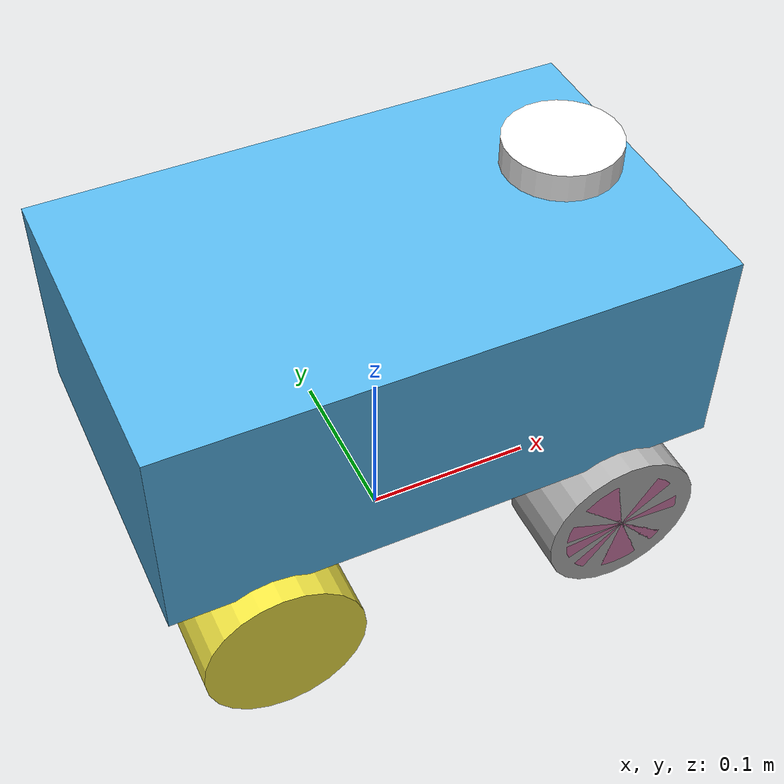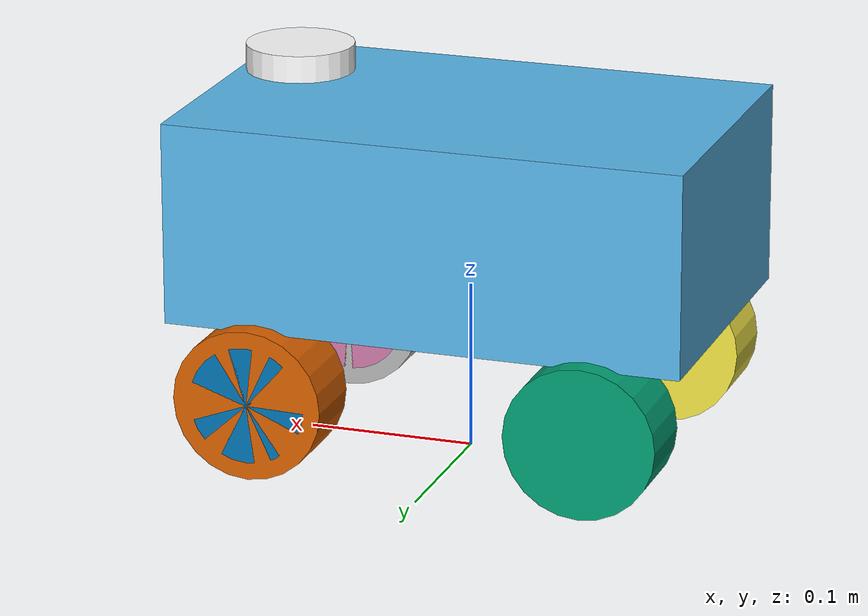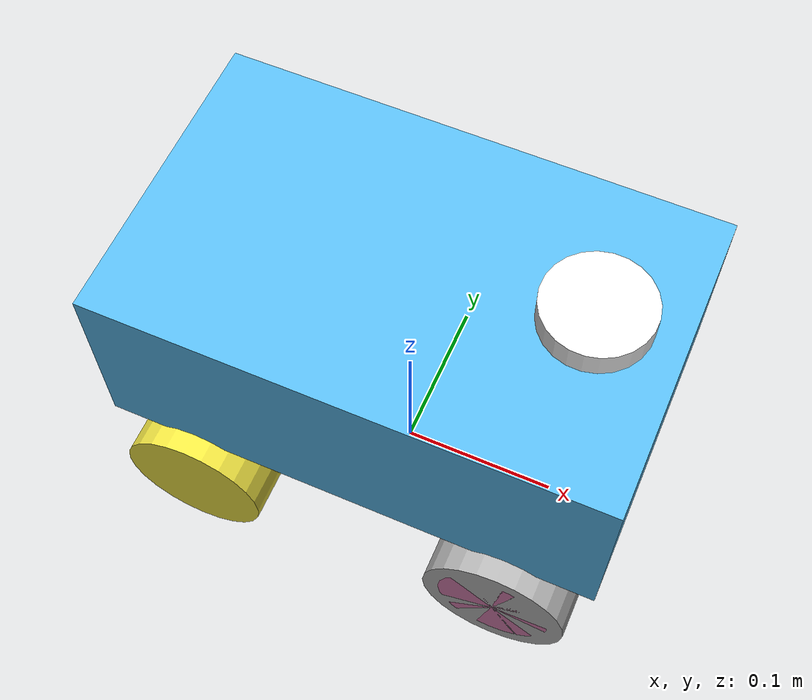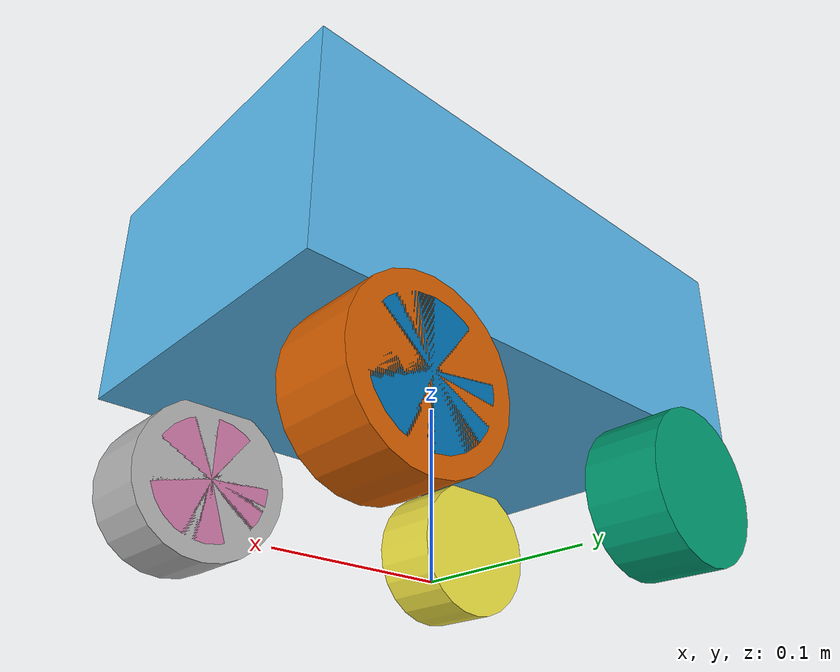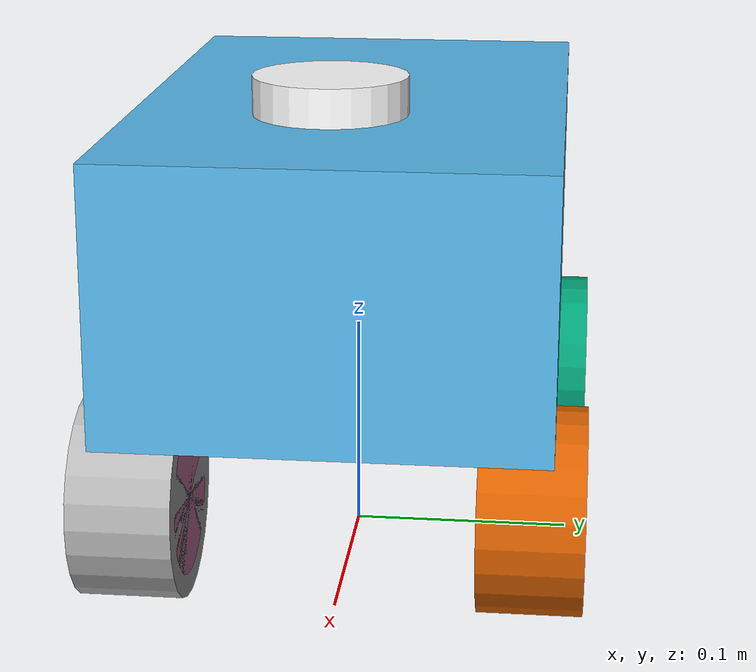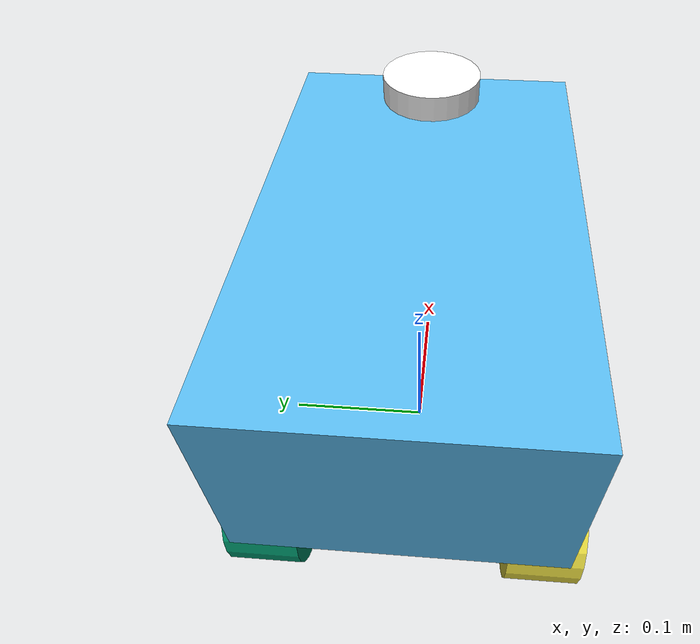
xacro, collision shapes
<?xml version="1.0"?>
<!--Auto: Zhui Li-->
<!--E-Mail: lz554113510@gmail.com -->
<!--Company: Institut für Intermodale Transport- und Logistiksysteme in Technische Universität Braunschweig -->

<robot name="limo_ackermann" xmlns:xacro="http://www.ros.org/wiki/xacro">

    <xacro:include filename="$(find limo_car)/gazebo/ackermann.xacro" />
    <xacro:include filename="$(find limo_car)/gazebo/sensor.xacro" />

    <!-- ************************* Gövde ****************************** -->
    <xacro:limo_ackermann />

    <!-- ************************* Laser ****************************** -->
    <xacro:gazebo_laser frame_prefix="laser" />

    <joint name="laser_joint" type="fixed">
        <origin xyz="0.105 0 0.08" rpy="0 0 -0.15"/>
        <parent link="base_link"/>
        <child link="laser_link"/>
    </joint>
    <!-- ************************* Depth-camera *********************** -->
    <xacro:gazebo_depth_camera frame_prefix="camera" />

    <joint name="depth_camera_joint" type="fixed">
        <!-- resmi AgileX değeri (bkz. limo_description/urdf/limo_four_diff.xacro) -->
        <origin xyz="0.084 0 0.03" rpy="0 0 0"/>
        <parent link="base_link"/>
        <child link="camera_link"/>
    </joint>
    <!-- ************************* IMU ******************************** -->
    <xacro:gazebo_imu frame_prefix="imu" />

    <joint name="imu_joint" type="fixed">
        <origin xyz="0 0 0" rpy="0 0 0"/>
        <parent link="base_link"/>
        <child link="imu_link"/>
    </joint>
</robot>

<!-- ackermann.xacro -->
<!--Auto: Zhui Li-->
<!--E-Mail: lz554113510@gmail.com -->
<!--Company: Institut für Intermodale Transport- und Logistiksysteme in Technische Universität Braunschweig -->

<robot name="limo_ackermann" xmlns:xacro="http://www.ros.org/wiki/xacro">

    <!-- ******************************** Paramenten zu definieren ************************************* -->
    <!-- definiert Value -->
    <xacro:property name="M_PI" value="3.14159"/>

    <!-- das Value sind all gemessen -->
    <xacro:property name="base_mass" value="4.34"/>
    <xacro:property name="base_x_size" value="0.19" />
    <xacro:property name="base_y_size" value="0.31" />
    <xacro:property name="base_z_size" value="0.12" />

    <xacro:property name="wheelbase" value="0.2"/>
    <xacro:property name="track" value="0.172"/>
    <xacro:property name="wheel_vertical_offset" value="-0.10" />

    <xacro:property name="wheel_mass" value="0.5" />
    <xacro:property name="wheel_length" value="0.045" />
    <xacro:property name="wheel_radius" value="0.045" />

    <!-- definieren die Macro-Function für die Rechnungen der Matrizen für Trägheitsmoment-->
    <!-- Zylinder -->
    <xacro:macro name="cylinder_inertial_matrix" params="m r h">
        <inertial>
            <origin xyz="0.0 0.0 0.0" />
            <mass value="${m}" />
            <inertia ixx="${m*(3*r*r+h*h)/12}" ixy = "0" ixz = "0"
                     iyy="${m*(3*r*r+h*h)/12}" iyz = "0"
                     izz="${m*r*r/2}" />
        </inertial>
    </xacro:macro>
    <!-- Quader -->
    <xacro:macro name="box_inertial_matrix" params="m w l h">
        <inertial>
            <origin xyz="0.0 0.0 0.0" />
            <mass value="${m}" />
            <inertia ixx="${m*(w*w+h*h)/12}" ixy = "0" ixz = "0"
                     iyy="${m*(h*h+l*l)/12}" iyz = "0"
                     izz="${m*(w*w+l*l)/12}" />
        </inertial>
    </xacro:macro>

    <!-- **************************** Makrofunktion zu definieren ************************************** -->
    <!-- Makrofunktion für vorderen Räder mit Steuerscharnier-->
    <!-- front left -->
    <xacro:macro name="limo_left_steering_hinge" params="parent_prefix wheel_prefix *joint_pose">
        <link name="${wheel_prefix}_steer_link">
            <inertial>
                <!-- diese Daten kommen aus den Herstellern -->
                <mass value="0.25" />
                <inertia ixx="0.00525" ixy="0" ixz="0" iyy="0.00035" iyz="0" izz="0.00525" />
                <origin xyz="0 0 0" />
            </inertial>
            <visual>
                <origin xyz="0 0 0" rpy="0 0 0" />
                <geometry>
                    <!-- es ist sehr klein, einfach als Klein definiert wird -->
                    <cylinder length="0.0001" radius="0.0001" />
                </geometry>
            </visual>
            <collision>
                <origin xyz="0 0 0" rpy="${M_PI/2} 0 0" />
                <geometry>
                    <cylinder length="${wheel_length}" radius="${wheel_radius-0.01}" />
                </geometry>
            </collision>
        </link>

        <joint name="${wheel_prefix}_steer_joint" type="revolute">
            <parent link="${parent_prefix}"/>
            <child link="${wheel_prefix}_steer_link"/>
            <xacro:insert_block name="joint_pose"/>
            <axis xyz="0 0 1" />
            <!-- Paramenten von Herstellern -->
            <limit lower="-0.48869" upper="0.48869" effort="20" velocity="0.5" />
            <dynamics damping="0.5" friction="0.2"/>
        </joint>

        <transmission name="${wheel_prefix}_hinge_trans" type="SimpleTransmission">
            <type>transmission_interface/SimpleTransmission</type>
            <actuator name="${wheel_prefix}_hinge_motor">
                <hardwareInterface>hardware_interface/EffortJointInterface</hardwareInterface>
                <mechanicalReduction>1</mechanicalReduction>
            </actuator>
            <joint name="${wheel_prefix}_steer_joint">
                <hardwareInterface>hardware_interface/EffortJointInterface</hardwareInterface>
            </joint>
        </transmission>

        <link name="${wheel_prefix}_wheel_link">
            <visual>
                <origin xyz="0 0 0" rpy="0 0 0" />
                <geometry>
                    <mesh filename="$(find limo_car)/meshes/limo_wheel.dae" scale="1.2 1.2 1.2"/>
                </geometry>
            </visual>
            <collision>
                <origin xyz="0 0 0" rpy="${M_PI/2} 0 0" />
                <geometry>
                    <cylinder length="${wheel_length}" radius="${wheel_radius}" />
                </geometry>
            </collision>
            <xacro:cylinder_inertial_matrix  m="${wheel_mass}" r="${wheel_radius}"  h="${wheel_length}" />
        </link>

        <joint name="${wheel_prefix}_wheel_joint" type="continuous">
            <parent link="${wheel_prefix}_steer_link"/>
            <child link="${wheel_prefix}_wheel_link"/>
            <origin xyz="0 0 0" rpy="0 0 0" />
            <axis xyz="0 1 0"/>
        </joint>

        <transmission name="${wheel_prefix}_wheel_trans" type="SimpleTransmission">
            <type>transmission_interface/SimpleTransmission</type>
            <actuator name="${wheel_prefix}_wheel_motor">
                <!-- Type für den Topic(Paramenten) -->
                <hardwareInterface>hardware_interface/VelocityJointInterface</hardwareInterface>
                <mechanicalReduction>1</mechanicalReduction>
            </actuator>
            <joint name="${wheel_prefix}_wheel_joint">
                <hardwareInterface>hardware_interface/VelocityJointInterface</hardwareInterface>
            </joint>
        </transmission>
    </xacro:macro>

    <!-- front right -->
    <xacro:macro name="limo_right_steering_hinge" params="parent_prefix wheel_prefix *joint_pose">
        <link name="${wheel_prefix}_steer_link">
            <inertial>
                <mass value="0.25" />
                <inertia ixx="0.00525" ixy="0" ixz="0" iyy="0.00035" iyz="0" izz="0.00525" />
                <origin xyz="0 0 0" />
            </inertial>
            <visual>
                <origin xyz="0 0 0" rpy="0 0 0" />
                <geometry>
                    <cylinder length="0.0001" radius="0.0001" />
                </geometry>
            </visual>
            <collision>
                <origin xyz="0 0 0" rpy="${M_PI/2} 0 0" />
                <geometry>
                    <cylinder length="${wheel_length}" radius="${wheel_radius-0.01}" />
                </geometry>
            </collision>
        </link>

        <joint name="${wheel_prefix}_steer_joint" type="revolute">
            <parent link="${parent_prefix}"/>
            <child link="${wheel_prefix}_steer_link"/>
            <xacro:insert_block name="joint_pose"/>
            <axis xyz="0 0 -1"/>
            <limit lower="-0.48869" upper="0.48869" effort="20" velocity="0.5" />
            <dynamics damping="0.5" friction="0.2"/>
        </joint>

        <transmission name="${wheel_prefix}_hinge_trans" type="SimpleTransmission">
            <type>transmission_interface/SimpleTransmission</type>
            <actuator name="${wheel_prefix}_hinge_motor">
                <hardwareInterface>hardware_interface/EffortJointInterface</hardwareInterface>
                <mechanicalReduction>1</mechanicalReduction>
            </actuator>
            <joint name="${wheel_prefix}_steer_joint">
                <hardwareInterface>hardware_interface/EffortJointInterface</hardwareInterface>
            </joint>
        </transmission>

        <link name="${wheel_prefix}_wheel_link">
            <visual>
                <origin xyz="0 0 0" rpy="0 0 0" />
                <geometry>
                    <mesh filename="$(find limo_car)/meshes/limo_wheel.dae" scale="1.2 1.2 1.2" />
                </geometry>
            </visual>
            <collision>
                <origin xyz="0 0 0" rpy="${M_PI/2} 0 0" />
                <geometry>
                    <cylinder length="${wheel_length}" radius="${wheel_radius}" />
                </geometry>
            </collision>
            <xacro:cylinder_inertial_matrix  m="${wheel_mass}" r="${wheel_radius}"  h="${wheel_length}" />
        </link>

        <joint name="${wheel_prefix}_wheel_joint" type="continuous">
            <parent link="${wheel_prefix}_steer_link"/>
            <child link="${wheel_prefix}_wheel_link"/>
            <origin xyz="0 0 0" rpy="0 0  0" />
            <axis xyz="0 -1 0"/>
        </joint>

        <transmission name="${wheel_prefix}_wheel_trans" type="SimpleTransmission">
            <type>transmission_interface/SimpleTransmission</type>
            <actuator name="${wheel_prefix}_wheel_motor">
                <!-- Type für den Topic(Paramenten) -->
                <hardwareInterface>hardware_interface/VelocityJointInterface</hardwareInterface>
                <mechanicalReduction>1</mechanicalReduction>
            </actuator>
            <joint name="${wheel_prefix}_wheel_joint">
                <hardwareInterface>hardware_interface/VelocityJointInterface</hardwareInterface>
            </joint>
        </transmission>
    </xacro:macro>

    <!-- ***************************************** Base zu bauen *************************************** -->
    <!-- erstellt Hauptanteil des Modells, definiert ein Nullpunkt, um Modell aufzubauen. Es ist einfach für weitere
    Darstellungspostion in Simulation-Umgebung -->
    <xacro:macro name="limo_ackermann">
        <link name="base_footprint"/>

        <joint name="base_joint" type="fixed">
            <parent link="base_footprint"/>
            <child link="base_link"/>
            <origin xyz="0.0 0.0 0.15" rpy="0 0 0"/>
        </joint>

        <!-- herstellt base_link -->
        <link name="base_link">
            <visual>
                <origin xyz="0 0 -0.15" rpy="0 0 ${M_PI/2}" />
                <geometry>
                    <!-- Modell von Hersteller, aber es ist kleiner als realen Produkt, da die Skale vergrößert wird -->
                    <mesh filename="$(find limo_car)/meshes/limo_base.dae" scale="1.2 1.2 1.2" />
                </geometry>
            </visual>
            <!-- Modell für physikalische Kollision zu modellieren. -->
            <collision>
                <origin xyz="0 0 0" rpy="0 0 0" />
                <geometry>
                    <box size="${base_y_size} ${base_x_size} ${base_z_size}"/>
                </geometry>
            </collision>
            <xacro:box_inertial_matrix  m="${base_mass}" w="${base_x_size}" l="${base_y_size}" h="${base_z_size}" />
        </link>

        <gazebo reference="base_link">
            <material>
                <color rgba="0 0 0 0.5"/>
            </material>
        </gazebo>

        <!-- hinten Räder -->
        <link name="rear_left_wheel_link">
            <visual>
                <origin xyz="0 0 0" rpy="0 0 0" />
                <geometry>
                    <mesh filename="$(find limo_car)/meshes/limo_wheel.dae" scale="1.2 1.2 1.2"/>
                </geometry>
            </visual>
            <collision>
                <origin xyz="0 0 0" rpy="${M_PI/2} 0 0" />
                <geometry>
                    <cylinder length="${wheel_length}" radius="${wheel_radius}" />
                </geometry>
            </collision>
            <xacro:cylinder_inertial_matrix  m="${wheel_mass}" r="${wheel_radius}" h="${wheel_length}"/>
        </link>

        <joint name="rear_left_wheel_joint" type="continuous">
            <parent link="base_link"/>
            <child link="rear_left_wheel_link"/>
            <origin xyz="${-wheelbase/2} ${track/2} ${wheel_vertical_offset}" rpy="0 0 0" />
            <axis xyz="0 1 0"/>
        </joint>

        <transmission name="rear_left_wheel_trans" type="SimpleTransmission">
            <type>transmission_interface/SimpleTransmission</type>
            <actuator name="rear_left_wheel_motor">
                <hardwareInterface>hardware_interface/VelocityJointInterface</hardwareInterface>
                <mechanicalReduction>1</mechanicalReduction>
            </actuator>
            <joint name="rear_left_wheel_joint">
                <hardwareInterface>hardware_interface/VelocityJointInterface</hardwareInterface>
            </joint>
        </transmission>

        <link name="rear_right_wheel_link">
            <visual>
                <origin xyz="0 0 0" rpy="0 0 0" />
                <geometry>
                    <mesh filename="$(find limo_car)/meshes/limo_wheel.dae" scale="1.2 1.2 1.2"/>
                </geometry>
            </visual>
            <collision>
                <origin xyz="0 0 0" rpy="${M_PI/2} 0 0" />
                <geometry>
                    <cylinder length="${wheel_length}" radius="${wheel_radius}" />
                </geometry>
            </collision>
            <xacro:cylinder_inertial_matrix  m="${wheel_mass}" r="${wheel_radius}" h="${wheel_length}"/>
        </link>

        <joint name="rear_right_wheel_joint" type="continuous">
            <parent link="base_link"/>
            <child link="rear_right_wheel_link"/>
            <origin xyz="${-wheelbase/2} ${-track/2} ${wheel_vertical_offset}" rpy="${M_PI} 0 0" />
            <axis xyz="0 -1 0"/>
        </joint>

        <transmission name="rear_right_wheel_trans" type="SimpleTransmission">
            <type>transmission_interface/SimpleTransmission</type>
            <actuator name="rear_right_wheel_motor">
                <hardwareInterface>hardware_interface/VelocityJointInterface</hardwareInterface>
                <mechanicalReduction>1</mechanicalReduction>
            </actuator>
            <joint name="rear_right_wheel_joint">
                <hardwareInterface>hardware_interface/VelocityJointInterface</hardwareInterface>
            </joint>
        </transmission>

        <!-- ruft Steuerscharnier mit vorderem Räder auf -->
        <xacro:limo_left_steering_hinge parent_prefix="base_link" wheel_prefix="front_left">
            <origin xyz="${wheelbase/2} ${track/2} ${wheel_vertical_offset}" rpy="0 0 0" />
        </xacro:limo_left_steering_hinge>

        <xacro:limo_right_steering_hinge parent_prefix="base_link" wheel_prefix="front_right">
            <origin xyz="${wheelbase/2} ${-track/2} ${wheel_vertical_offset}" rpy="${M_PI} 0 0" />
        </xacro:limo_right_steering_hinge>

        <!-- ********************************** Kontrolle zu erstellen ************************************* -->
        <gazebo>
            <plugin name="gazebo_ros_control" filename="libgazebo_ros_control.so" />
            <plugin name="ackermann_controller" filename="libgazebo_ros_ackermann_drive.so">
                <ros>
                    <remapping>cmd_vel:=cmd_vel_steer</remapping>
                </ros>
                <update_rate>100</update_rate>
                <front_left_joint>front_left_wheel_joint</front_left_joint>
                <front_right_joint>front_right_wheel_joint</front_right_joint>
                <rear_left_joint>rear_left_wheel_joint</rear_left_joint>
                <rear_right_joint>rear_right_wheel_joint</rear_right_joint>
                <left_steering_joint>front_left_steer_joint</left_steering_joint>
                <right_steering_joint>front_right_steer_joint</right_steering_joint>
                <steering_wheel_joint>/</steering_wheel_joint>

                <left_steering_pid_gain>10000 100 10</left_steering_pid_gain>
                <left_steering_i_rang>0 0</left_steering_i_rang>
                <right_steering_pid_gain>10000 100 10</right_steering_pid_gain>
                <right_steering_i_rang>0 0</right_steering_i_rang>
                <linear_velocity_pid_gain>0.5 10 0.001</linear_velocity_pid_gain>
                <linear_velocity_i_range>0 0</linear_velocity_i_range>

                <max_steer>0.48869</max_steer>

                <wheel_separation>0.172</wheel_separation>
                <wheel_diameter>0.09</wheel_diameter>
                <max_wheel_torque>20</max_wheel_torque>
                <max_wheel_acceleration>1.0</max_wheel_acceleration>
                <command_topic>cmd_vel_steer</command_topic>
                <publish_odom>true</publish_odom>
                <publish_odom_tf>true</publish_odom_tf>
                <publish_wheel_tf>true</publish_wheel_tf>
                <odometry_topic>odom</odometry_topic>
                <odometry_frame>odom</odometry_frame>
                <robot_base_frame>base_footprint</robot_base_frame>
                <odometry_source>1</odometry_source>
            </plugin>
        </gazebo>

        <!-- Tekerlek teması (24.09): varsayılan ODE teması çok sert, araç dururken titriyordu
             (IMU ivme σ z 0.25 m/s², gerçek 0.025). kp/kd sönümüyle gerçekle aynı (docs/sensor_modeli.md). -->
        <gazebo reference="front_left_wheel_link"><mu1>1.0</mu1><mu2>1.0</mu2><kp>1000000.0</kp><kd>100.0</kd><minDepth>0.001</minDepth><maxVel>0.1</maxVel></gazebo>
        <gazebo reference="front_right_wheel_link"><mu1>1.0</mu1><mu2>1.0</mu2><kp>1000000.0</kp><kd>100.0</kd><minDepth>0.001</minDepth><maxVel>0.1</maxVel></gazebo>
        <gazebo reference="rear_left_wheel_link"><mu1>1.0</mu1><mu2>1.0</mu2><kp>1000000.0</kp><kd>100.0</kd><minDepth>0.001</minDepth><maxVel>0.1</maxVel></gazebo>
        <gazebo reference="rear_right_wheel_link"><mu1>1.0</mu1><mu2>1.0</mu2><kp>1000000.0</kp><kd>100.0</kd><minDepth>0.001</minDepth><maxVel>0.1</maxVel></gazebo>
    </xacro:macro>
</robot>

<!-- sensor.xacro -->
<!-- Autor: Zhui Li -->
<!--E-Mail: lz554113510@gmail.com -->
<!--Company: Institut für Intermodale Transport- und Logistiksysteme in Technische Universität Braunschweig -->

<robot name="limo_sensor" xmlns:xacro="http://www.ros.org/wiki/xacro">

    <!-- ******************************* Makrofunktion für Laser-Sensor ***************************** -->
    <xacro:macro name="gazebo_laser" params="frame_prefix">
        <link name='${frame_prefix}_link'>
            <inertial>
                <mass value="0.1"/>
                <origin xyz="0.0 0 0" rpy="0 0 0"/>
                <inertia
                        ixx="1e-6" ixy="0" ixz="0"
                        iyy="1e-6" iyz="0"
                        izz="1e-6"
                />
            </inertial>
            <visual name='laser_visual'>
                <origin xyz="0 0 0" rpy="0 0 0"/>
                <geometry>
                    <cylinder radius="0.02" length="0.01"/>
                </geometry>
                <material name='laser_material'>
                    <color rgba="1 1 1 1" />
                    <ambient>0.1 0.1 0.1 1</ambient>
                    <diffuse>0.1 0.1 0.2 1</diffuse>
                    <specular>0 0 0 0</specular>
                    <emissive>0 0 0 1</emissive>
                </material>
            </visual>
            <collision name='laser_collision'>
                <origin xyz="0 0 0" rpy="0 0 0"/>
                <geometry>
                    <cylinder radius="0.032" length="0.016"/>
                </geometry>
            </collision>
        </link>

        <gazebo reference="${frame_prefix}_link">
            <sensor type="ray" name="laser_sensor">
                <visualize>false</visualize>
                <update_rate>6</update_rate>
                <ray>
                    <scan>
                        <horizontal>
                            <samples>481</samples>
                            <resolution>1</resolution>
                            <min_angle>-2.1468</min_angle> <!-- Einheit in "rad", von Hersteller -->
                            <max_angle>2.4609</max_angle>
                        </horizontal>
                    </scan>
                    <range>
                        <min>0.10</min>
                        <max>12.0</max>
                        <resolution>0.01</resolution>
                    </range>
                    <!-- um bessere Realität zu simulieren, wird Rauschen auch addiert -->
                    <noise>
                        <type>gaussian</type>
                        <mean>0.0</mean>
                        <stddev>0.007</stddev>
                    </noise>
                </ray>
                <plugin name="gazebo_ros_laser_sensor" filename="libgazebo_ros_ray_sensor.so">
                    <ros>
                        <namespace>/</namespace>
                        <remapping>~/out:=scan</remapping>
                    </ros>
                    <output_type>sensor_msgs/LaserScan</output_type>
                    <min_intensity>150.0</min_intensity>
                </plugin>
            </sensor>
        </gazebo>
    </xacro:macro>

    <!-- ******************************* Makrofunktion für Depth-Camera ***************************** -->
    <xacro:macro name="gazebo_depth_camera" params="frame_prefix">
        <link name='${frame_prefix}_link'>
            <origin xyz="0 0 0" rpy="0 0 0"/>
            <inertial>
                <mass value="0.1"/>
                <origin xyz="0.0 0 0" rpy="0 0 0"/>
                <inertia
                        ixx="1e-6" ixy="0" ixz="0"
                        iyy="1e-6" iyz="0"
                        izz="1e-6"
                />
            </inertial>
            <visual name='depth_camera_visual'>
                <origin xyz="0 0 0" rpy="0 0 0"/>
                <geometry>
                    <box size="0.02 0.06 0.015"/>
                </geometry>
                <material name='depth_camera_material'>
                    <color rgba="0.75 0.75 0.75 1" />
                    <ambient>0.1 0.1 0.1 1</ambient>
                    <diffuse>0.1 0.1 0.2 1</diffuse>
                    <specular>0 0 0 0</specular>
                    <emissive>0 0 0 1</emissive>
                </material>
            </visual>
            <collision name='depth_camera_collision'>
                <origin xyz="0 0 0" rpy="0 0 0"/>
                <geometry>
                    <box size="0.02 0.06 0.015"/>
                </geometry>
            </collision>
        </link>

        <link name="depth_link" />

        <joint name="${frame_prefix}_to_camera_joint" type="fixed">
            <origin xyz="0 0 0" rpy="-1.570796 0 -1.570796 "/>
            <parent link="${frame_prefix}_link"/>
            <child link="depth_link"/>
        </joint>

        <gazebo reference="${frame_prefix}_link">
            <sensor name="sensor_camera" type="depth">
                <pose>0.0 0.0 0.0 0.0 0.0 0.0</pose>
                <always_on>true</always_on>
                <visualize>true</visualize>
                <update_rate>10.0</update_rate>
                <camera name="head">
                    <horizontal_fov>1.3962634</horizontal_fov> <!-- 60*pi/180 -->
                    <!-- normalisieren die Form für Fotos -->
                    <image>
                        <width>640</width>
                        <height>480</height>
                        <format>R8G8B8</format>
                    </image>
                    <clip>
                        <near>0.15</near>
                        <far>8.0</far>
                    </clip>
                </camera>
                <plugin name="gazebo_ros_depth_camera_sensor" filename="libgazebo_ros_camera.so">
                    <ros>
                        <remapping>${frame_prefix}/image_raw:=rgb/image_raw</remapping>
                        <remapping>${frame_prefix}/image_depth:=depth/image_raw</remapping>
                        <remapping>${frame_prefix}/camera_info:=rgb/camera_info</remapping>
                        <remapping>${frame_prefix}/camera_info_depth:=depth/camera_info</remapping>
                        <remapping>${frame_prefix}/points:=depth/points</remapping>
                    </ros>
                    <camera_name>${frame_prefix}</camera_name>
                    <frame_name>${frame_prefix}_frame_optical</frame_name>
                    <hack_baseline>0.07</hack_baseline>
                    <min_depth>0.001</min_depth>
                    <max_depth>300.0</max_depth>
                </plugin>
            </sensor>
        </gazebo>
    </xacro:macro>

    <!-- ******************************* Makrofunktion für IMU ***************************** -->
    <xacro:macro name="gazebo_imu" params="frame_prefix">
        <link name='${frame_prefix}_link'>
            <pose>0 0 0 0 0 0</pose>
            <inertial>
                <mass value="0.01"/>
                <origin xyz="0.0 0 0" rpy="0 0 0"/>
                <inertia
                        ixx="1e-7" ixy="0" ixz="0"
                        iyy="1e-7" iyz="0"
                        izz="1e-7"
                />
            </inertial>
            <visual name='imu_visual'>
                <origin xyz="0 0 0" rpy="0 0 0"/>
                <geometry>
                    <box size="0.001 0.001 0.001"/>
                </geometry>
                <material name='imu_material'>
                    <color rgba="0.75 0.75 0.75 1" />
                    <ambient>0.1 0.1 0.1 1</ambient>
                    <diffuse>0.1 0.1 0.2 1</diffuse>
                    <specular>0 0 0 0</specular>
                    <emissive>0 0 0 1</emissive>
                </material>
            </visual>
            <collision name='imu_collision'>
                <origin xyz="0 0 0" rpy="0 0 0"/>
                <geometry>
                    <box size="0.001 0.001 0.001"/>
                </geometry>
            </collision>
        </link>

        <gazebo reference="${frame_prefix}_link">
            <gravity>true</gravity>
            <sensor name="imu_sensor" type="imu">
                <always_on>true</always_on>
                <update_rate>90</update_rate>
                <imu>
                    <angular_velocity>
                        <x><noise type="gaussian"><mean>0.0</mean><stddev>0.00087</stddev></noise></x>
                        <y><noise type="gaussian"><mean>0.0</mean><stddev>0.0016</stddev></noise></y>
                        <z><noise type="gaussian"><mean>0.0</mean><stddev>0.00087</stddev></noise></z>
                    </angular_velocity>
                    <linear_acceleration>
                        <x><noise type="gaussian"><mean>0.0</mean><stddev>0.025</stddev></noise></x>
                        <y><noise type="gaussian"><mean>0.0</mean><stddev>0.025</stddev></noise></y>
                        <z><noise type="gaussian"><mean>0.0</mean><stddev>0.025</stddev></noise></z>
                    </linear_acceleration>
                </imu>
                <plugin filename="libgazebo_ros_imu_sensor.so" name="imu_plugin">
                    <ros><namespace>/</namespace><remapping>~/out:=imu</remapping></ros>
                    <frame_name>${frame_prefix}_link</frame_name>
                    <initial_orientation_as_reference>false</initial_orientation_as_reference>
                </plugin>
            </sensor>
        </gazebo>
    </xacro:macro>
</robot>
